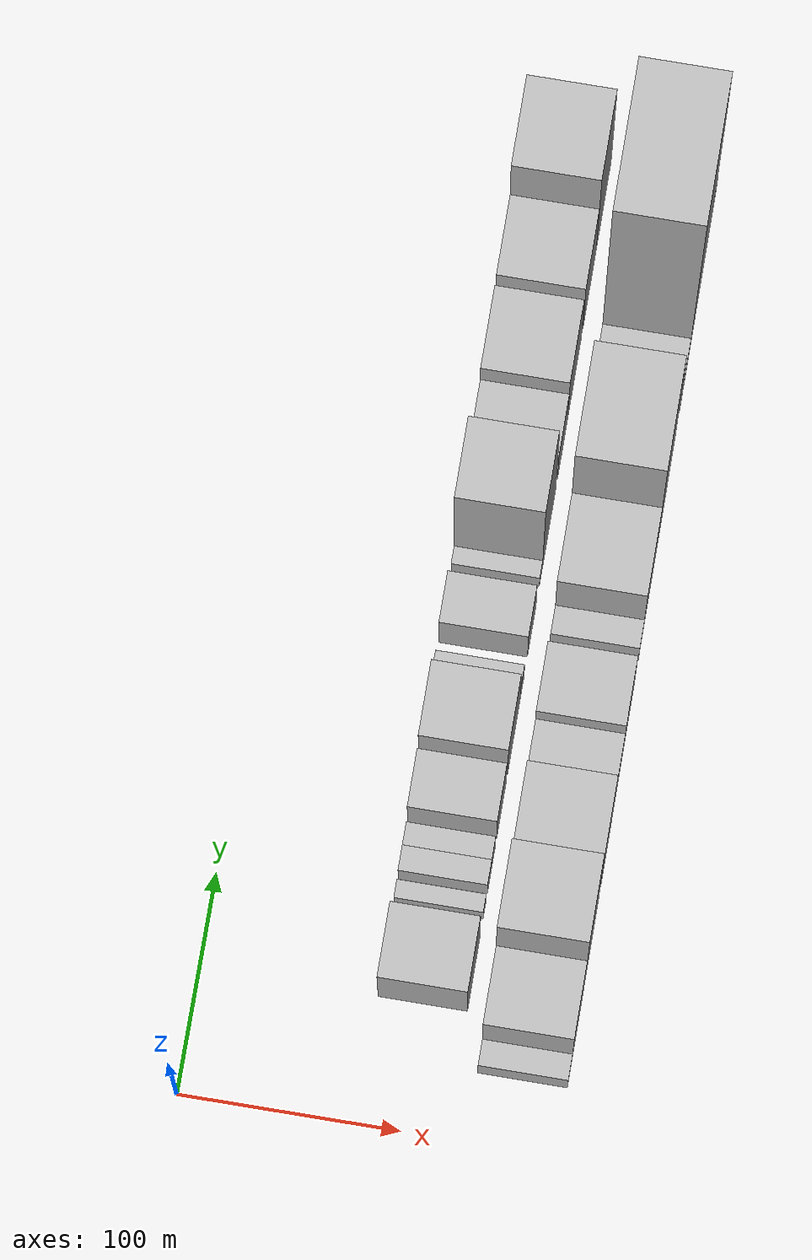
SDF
<sdf version="1.6">
 <world name="default">
  <model name="building_14">
   <static>1</static>
   <pose>100.0000 74.5222 0 0.000000 0.000000 0.000000</pose>
   <link name="link">
    <pose>0 0 28.50 0 0 0</pose>
    <collision name="collision"><geometry><box><size>40.0000 33.8331 57.0000</size></box></geometry></collision>
    <visual name="visual">
     <cast_shadows>0</cast_shadows>
     <geometry><box><size>40.0000 33.8331 57.0000</size></box></geometry>
     <material>
      <script>
       <uri>model://HANNAS_wall/materials/scripts</uri>
       <uri>model://HANNAS_wall/materials/textures</uri>
       <name>vrc/HANNAS_wall</name>
      </script>
     </material>
    </visual>
   </link>
  </model>
  <model name="building_15">
   <static>1</static>
   <pose>100.0000 103.6076 0 0.000000 0.000000 0.000000</pose>
   <link name="link">
    <pose>0 0 9.00 0 0 0</pose>
    <collision name="collision"><geometry><box><size>40.0000 8.3377 18.0000</size></box></geometry></collision>
    <visual name="visual">
     <cast_shadows>0</cast_shadows>
     <geometry><box><size>40.0000 8.3377 18.0000</size></box></geometry>
     <material>
      <script>
       <uri>model://HANNAS_wall/materials/scripts</uri>
       <uri>model://HANNAS_wall/materials/textures</uri>
       <name>vrc/HANNAS_wall</name>
      </script>
     </material>
    </visual>
   </link>
  </model>
  <model name="building_16">
   <static>1</static>
   <pose>100.0000 116.5415 0 0.000000 0.000000 0.000000</pose>
   <link name="link">
    <pose>0 0 12.00 0 0 0</pose>
    <collision name="collision"><geometry><box><size>40.0000 11.5301 24.0000</size></box></geometry></collision>
    <visual name="visual">
     <cast_shadows>0</cast_shadows>
     <geometry><box><size>40.0000 11.5301 24.0000</size></box></geometry>
     <material>
      <script>
       <uri>model://HANNAS_wall/materials/scripts</uri>
       <uri>model://HANNAS_wall/materials/textures</uri>
       <name>vrc/HANNAS_wall</name>
      </script>
     </material>
    </visual>
   </link>
  </model>
  <model name="building_17">
   <static>1</static>
   <pose>100.0000 127.5375 0 0.000000 0.000000 0.000000</pose>
   <link name="link">
    <pose>0 0 12.00 0 0 0</pose>
    <collision name="collision"><geometry><box><size>40.0000 10.4619 24.0000</size></box></geometry></collision>
    <visual name="visual">
     <cast_shadows>0</cast_shadows>
     <geometry><box><size>40.0000 10.4619 24.0000</size></box></geometry>
     <material>
      <script>
       <uri>model://HANNAS_wall/materials/scripts</uri>
       <uri>model://HANNAS_wall/materials/textures</uri>
       <name>vrc/HANNAS_wall</name>
      </script>
     </material>
    </visual>
   </link>
  </model>
  <model name="building_18">
   <static>1</static>
   <pose>100.0000 148.9427 0 0.000000 0.000000 0.000000</pose>
   <link name="link">
    <pose>0 0 22.50 0 0 0</pose>
    <collision name="collision"><geometry><box><size>40.0000 26.3484 45.0000</size></box></geometry></collision>
    <visual name="visual">
     <cast_shadows>0</cast_shadows>
     <geometry><box><size>40.0000 26.3484 45.0000</size></box></geometry>
     <material>
      <script>
       <uri>model://HANNAS_wall/materials/scripts</uri>
       <uri>model://HANNAS_wall/materials/textures</uri>
       <name>vrc/HANNAS_wall</name>
      </script>
     </material>
    </visual>
   </link>
  </model>
  <model name="building_19">
   <static>1</static>
   <pose>100.0000 182.2461 0 0.000000 0.000000 0.000000</pose>
   <link name="link">
    <pose>0 0 30.00 0 0 0</pose>
    <collision name="collision"><geometry><box><size>40.0000 34.2584 60.0000</size></box></geometry></collision>
    <visual name="visual">
     <cast_shadows>0</cast_shadows>
     <geometry><box><size>40.0000 34.2584 60.0000</size></box></geometry>
     <material>
      <script>
       <uri>model://HANNAS_wall/materials/scripts</uri>
       <uri>model://HANNAS_wall/materials/textures</uri>
       <name>vrc/HANNAS_wall</name>
      </script>
     </material>
    </visual>
   </link>
  </model>
  <model name="building_20">
   <static>1</static>
   <pose>100.0000 204.8262 0 0.000000 0.000000 0.000000</pose>
   <link name="link">
    <pose>0 0 13.50 0 0 0</pose>
    <collision name="collision"><geometry><box><size>40.0000 10.9018 27.0000</size></box></geometry></collision>
    <visual name="visual">
     <cast_shadows>0</cast_shadows>
     <geometry><box><size>40.0000 10.9018 27.0000</size></box></geometry>
     <material>
      <script>
       <uri>model://HANNAS_wall/materials/scripts</uri>
       <uri>model://HANNAS_wall/materials/textures</uri>
       <name>vrc/HANNAS_wall</name>
      </script>
     </material>
    </visual>
   </link>
  </model>
  <model name="building_21">
   <static>1</static>
   <pose>100.0000 231.0341 0 0.000000 0.000000 0.000000</pose>
   <link name="link">
    <pose>0 0 22.50 0 0 0</pose>
    <collision name="collision"><geometry><box><size>40.0000 23.5141 45.0000</size></box></geometry></collision>
    <visual name="visual">
     <cast_shadows>0</cast_shadows>
     <geometry><box><size>40.0000 23.5141 45.0000</size></box></geometry>
     <material>
      <script>
       <uri>model://HANNAS_wall/materials/scripts</uri>
       <uri>model://HANNAS_wall/materials/textures</uri>
       <name>vrc/HANNAS_wall</name>
      </script>
     </material>
    </visual>
   </link>
  </model>
  <model name="building_22">
   <static>1</static>
   <pose>100.0000 255.8739 0 0.000000 0.000000 0.000000</pose>
   <link name="link">
    <pose>0 0 9.00 0 0 0</pose>
    <collision name="collision"><geometry><box><size>40.0000 8.1655 18.0000</size></box></geometry></collision>
    <visual name="visual">
     <cast_shadows>0</cast_shadows>
     <geometry><box><size>40.0000 8.1655 18.0000</size></box></geometry>
     <material>
      <script>
       <uri>model://HANNAS_wall/materials/scripts</uri>
       <uri>model://HANNAS_wall/materials/textures</uri>
       <name>vrc/HANNAS_wall</name>
      </script>
     </material>
    </visual>
   </link>
  </model>
  <model name="building_23">
   <static>1</static>
   <pose>100.0000 278.2463 0 0.000000 0.000000 0.000000</pose>
   <link name="link">
    <pose>0 0 58.50 0 0 0</pose>
    <collision name="collision"><geometry><box><size>40.0000 36.5794 117.0000</size></box></geometry></collision>
    <visual name="visual">
     <cast_shadows>0</cast_shadows>
     <geometry><box><size>40.0000 36.5794 117.0000</size></box></geometry>
     <material>
      <script>
       <uri>model://HANNAS_wall/materials/scripts</uri>
       <uri>model://HANNAS_wall/materials/textures</uri>
       <name>vrc/HANNAS_wall</name>
      </script>
     </material>
    </visual>
   </link>
  </model>
  <model name="building_24">
   <static>1</static>
   <pose>100.0000 315.6648 0 0.000000 0.000000 0.000000</pose>
   <link name="link">
    <pose>0 0 24.00 0 0 0</pose>
    <collision name="collision"><geometry><box><size>40.0000 28.2575 48.0000</size></box></geometry></collision>
    <visual name="visual">
     <cast_shadows>0</cast_shadows>
     <geometry><box><size>40.0000 28.2575 48.0000</size></box></geometry>
     <material>
      <script>
       <uri>model://HANNAS_wall/materials/scripts</uri>
       <uri>model://HANNAS_wall/materials/textures</uri>
       <name>vrc/HANNAS_wall</name>
      </script>
     </material>
    </visual>
   </link>
  </model>
  <model name="building_25">
   <static>1</static>
   <pose>100.0000 348.8951 0 0.000000 0.000000 0.000000</pose>
   <link name="link">
    <pose>0 0 34.50 0 0 0</pose>
    <collision name="collision"><geometry><box><size>40.0000 38.2031 69.0000</size></box></geometry></collision>
    <visual name="visual">
     <cast_shadows>0</cast_shadows>
     <geometry><box><size>40.0000 38.2031 69.0000</size></box></geometry>
     <material>
      <script>
       <uri>model://HANNAS_wall/materials/scripts</uri>
       <uri>model://HANNAS_wall/materials/textures</uri>
       <name>vrc/HANNAS_wall</name>
      </script>
     </material>
    </visual>
   </link>
  </model>
  <model name="building_26">
   <static>1</static>
   <pose>100.0000 390.5127 0 0.000000 0.000000 0.000000</pose>
   <link name="link">
    <pose>0 0 36.00 0 0 0</pose>
    <collision name="collision"><geometry><box><size>40.0000 37.0322 72.0000</size></box></geometry></collision>
    <visual name="visual">
     <cast_shadows>0</cast_shadows>
     <geometry><box><size>40.0000 37.0322 72.0000</size></box></geometry>
     <material>
      <script>
       <uri>model://HANNAS_wall/materials/scripts</uri>
       <uri>model://HANNAS_wall/materials/textures</uri>
       <name>vrc/HANNAS_wall</name>
      </script>
     </material>
    </visual>
   </link>
  </model>
  <model name="building_27">
   <static>1</static>
   <pose>100.0000 429.8774 0 0.000000 0.000000 0.000000</pose>
   <link name="link">
    <pose>0 0 60.00 0 0 0</pose>
    <collision name="collision"><geometry><box><size>40.0000 41.6971 120.0000</size></box></geometry></collision>
    <visual name="visual">
     <cast_shadows>0</cast_shadows>
     <geometry><box><size>40.0000 41.6971 120.0000</size></box></geometry>
     <material>
      <script>
       <uri>model://HANNAS_wall/materials/scripts</uri>
       <uri>model://HANNAS_wall/materials/textures</uri>
       <name>vrc/HANNAS_wall</name>
      </script>
     </material>
    </visual>
   </link>
  </model>
  <model name="building_40">
   <static>1</static>
   <pose>149.0000 37.2230 0 0.000000 0.000000 0.000000</pose>
   <link name="link">
    <pose>0 0 12.00 0 0 0</pose>
    <collision name="collision"><geometry><box><size>40.0000 11.7597 24.0000</size></box></geometry></collision>
    <visual name="visual">
     <cast_shadows>0</cast_shadows>
     <geometry><box><size>40.0000 11.7597 24.0000</size></box></geometry>
     <material>
      <script>
       <uri>model://HANNAS_wall/materials/scripts</uri>
       <uri>model://HANNAS_wall/materials/textures</uri>
       <name>vrc/HANNAS_wall</name>
      </script>
     </material>
    </visual>
   </link>
  </model>
  <model name="building_41">
   <static>1</static>
   <pose>149.0000 60.5076 0 0.000000 0.000000 0.000000</pose>
   <link name="link">
    <pose>0 0 34.50 0 0 0</pose>
    <collision name="collision"><geometry><box><size>40.0000 34.8094 69.0000</size></box></geometry></collision>
    <visual name="visual">
     <cast_shadows>0</cast_shadows>
     <geometry><box><size>40.0000 34.8094 69.0000</size></box></geometry>
     <material>
      <script>
       <uri>model://HANNAS_wall/materials/scripts</uri>
       <uri>model://HANNAS_wall/materials/textures</uri>
       <name>vrc/HANNAS_wall</name>
      </script>
     </material>
    </visual>
   </link>
  </model>
  <model name="building_42">
   <static>1</static>
   <pose>149.0000 97.3107 0 0.000000 0.000000 0.000000</pose>
   <link name="link">
    <pose>0 0 60.00 0 0 0</pose>
    <collision name="collision"><geometry><box><size>40.0000 38.7968 120.0000</size></box></geometry></collision>
    <visual name="visual">
     <cast_shadows>0</cast_shadows>
     <geometry><box><size>40.0000 38.7968 120.0000</size></box></geometry>
     <material>
      <script>
       <uri>model://HANNAS_wall/materials/scripts</uri>
       <uri>model://HANNAS_wall/materials/textures</uri>
       <name>vrc/HANNAS_wall</name>
      </script>
     </material>
    </visual>
   </link>
  </model>
  <model name="building_43">
   <static>1</static>
   <pose>149.0000 140.5461 0 0.000000 0.000000 0.000000</pose>
   <link name="link">
    <pose>0 0 37.50 0 0 0</pose>
    <collision name="collision"><geometry><box><size>40.0000 37.6740 75.0000</size></box></geometry></collision>
    <visual name="visual">
     <cast_shadows>0</cast_shadows>
     <geometry><box><size>40.0000 37.6740 75.0000</size></box></geometry>
     <material>
      <script>
       <uri>model://HANNAS_wall/materials/scripts</uri>
       <uri>model://HANNAS_wall/materials/textures</uri>
       <name>vrc/HANNAS_wall</name>
      </script>
     </material>
    </visual>
   </link>
  </model>
  <model name="building_44">
   <static>1</static>
   <pose>149.0000 171.8109 0 0.000000 0.000000 0.000000</pose>
   <link name="link">
    <pose>0 0 21.00 0 0 0</pose>
    <collision name="collision"><geometry><box><size>40.0000 24.8556 42.0000</size></box></geometry></collision>
    <visual name="visual">
     <cast_shadows>0</cast_shadows>
     <geometry><box><size>40.0000 24.8556 42.0000</size></box></geometry>
     <material>
      <script>
       <uri>model://HANNAS_wall/materials/scripts</uri>
       <uri>model://HANNAS_wall/materials/textures</uri>
       <name>vrc/HANNAS_wall</name>
      </script>
     </material>
    </visual>
   </link>
  </model>
  <model name="building_45">
   <static>1</static>
   <pose>149.0000 200.0804 0 0.000000 0.000000 0.000000</pose>
   <link name="link">
    <pose>0 0 30.00 0 0 0</pose>
    <collision name="collision"><geometry><box><size>40.0000 31.6833 60.0000</size></box></geometry></collision>
    <visual name="visual">
     <cast_shadows>0</cast_shadows>
     <geometry><box><size>40.0000 31.6833 60.0000</size></box></geometry>
     <material>
      <script>
       <uri>model://HANNAS_wall/materials/scripts</uri>
       <uri>model://HANNAS_wall/materials/textures</uri>
       <name>vrc/HANNAS_wall</name>
      </script>
     </material>
    </visual>
   </link>
  </model>
  <model name="building_46">
   <static>1</static>
   <pose>149.0000 232.4997 0 0.000000 0.000000 0.000000</pose>
   <link name="link">
    <pose>0 0 13.50 0 0 0</pose>
    <collision name="collision"><geometry><box><size>40.0000 13.1554 27.0000</size></box></geometry></collision>
    <visual name="visual">
     <cast_shadows>0</cast_shadows>
     <geometry><box><size>40.0000 13.1554 27.0000</size></box></geometry>
     <material>
      <script>
       <uri>model://HANNAS_wall/materials/scripts</uri>
       <uri>model://HANNAS_wall/materials/textures</uri>
       <name>vrc/HANNAS_wall</name>
      </script>
     </material>
    </visual>
   </link>
  </model>
  <model name="building_47">
   <static>1</static>
   <pose>149.0000 259.1072 0 0.000000 0.000000 0.000000</pose>
   <link name="link">
    <pose>0 0 39.00 0 0 0</pose>
    <collision name="collision"><geometry><box><size>40.0000 40.0596 78.0000</size></box></geometry></collision>
    <visual name="visual">
     <cast_shadows>0</cast_shadows>
     <geometry><box><size>40.0000 40.0596 78.0000</size></box></geometry>
     <material>
      <script>
       <uri>model://HANNAS_wall/materials/scripts</uri>
       <uri>model://HANNAS_wall/materials/textures</uri>
       <name>vrc/HANNAS_wall</name>
      </script>
     </material>
    </visual>
   </link>
  </model>
  <model name="building_48">
   <static>1</static>
   <pose>149.0000 304.8563 0 0.000000 0.000000 0.000000</pose>
   <link name="link">
    <pose>0 0 75.00 0 0 0</pose>
    <collision name="collision"><geometry><box><size>40.0000 51.4387 150.0000</size></box></geometry></collision>
    <visual name="visual">
     <cast_shadows>0</cast_shadows>
     <geometry><box><size>40.0000 51.4387 150.0000</size></box></geometry>
     <material>
      <script>
       <uri>model://HANNAS_wall/materials/scripts</uri>
       <uri>model://HANNAS_wall/materials/textures</uri>
       <name>vrc/HANNAS_wall</name>
      </script>
     </material>
    </visual>
   </link>
  </model>
  <model name="building_49">
   <static>1</static>
   <pose>149.0000 344.2085 0 0.000000 0.000000 0.000000</pose>
   <link name="link">
    <pose>0 0 9.00 0 0 0</pose>
    <collision name="collision"><geometry><box><size>40.0000 7.2657 18.0000</size></box></geometry></collision>
    <visual name="visual">
     <cast_shadows>0</cast_shadows>
     <geometry><box><size>40.0000 7.2657 18.0000</size></box></geometry>
     <material>
      <script>
       <uri>model://HANNAS_wall/materials/scripts</uri>
       <uri>model://HANNAS_wall/materials/textures</uri>
       <name>vrc/HANNAS_wall</name>
      </script>
     </material>
    </visual>
   </link>
  </model>
  <model name="building_50">
   <static>1</static>
   <pose>149.0000 360.0584 0 0.000000 0.000000 0.000000</pose>
   <link name="link">
    <pose>0 0 15.00 0 0 0</pose>
    <collision name="collision"><geometry><box><size>40.0000 16.4343 30.0000</size></box></geometry></collision>
    <visual name="visual">
     <cast_shadows>0</cast_shadows>
     <geometry><box><size>40.0000 16.4343 30.0000</size></box></geometry>
     <material>
      <script>
       <uri>model://HANNAS_wall/materials/scripts</uri>
       <uri>model://HANNAS_wall/materials/textures</uri>
       <name>vrc/HANNAS_wall</name>
      </script>
     </material>
    </visual>
   </link>
  </model>
  <model name="building_51">
   <static>1</static>
   <pose>149.0000 402.3273 0 0.000000 0.000000 0.000000</pose>
   <link name="link">
    <pose>0 0 112.50 0 0 0</pose>
    <collision name="collision"><geometry><box><size>40.0000 68.1034 225.0000</size></box></geometry></collision>
    <visual name="visual">
     <cast_shadows>0</cast_shadows>
     <geometry><box><size>40.0000 68.1034 225.0000</size></box></geometry>
     <material>
      <script>
       <uri>model://HANNAS_wall/materials/scripts</uri>
       <uri>model://HANNAS_wall/materials/textures</uri>
       <name>vrc/HANNAS_wall</name>
      </script>
     </material>
    </visual>
   </link>
  </model>
  <model name="building_52">
   <static>1</static>
   <pose>149.0000 441.0323 0 0.000000 0.000000 0.000000</pose>
   <link name="link">
    <pose>0 0 10.50 0 0 0</pose>
    <collision name="collision"><geometry><box><size>40.0000 9.3066 21.0000</size></box></geometry></collision>
    <visual name="visual">
     <cast_shadows>0</cast_shadows>
     <geometry><box><size>40.0000 9.3066 21.0000</size></box></geometry>
     <material>
      <script>
       <uri>model://HANNAS_wall/materials/scripts</uri>
       <uri>model://HANNAS_wall/materials/textures</uri>
       <name>vrc/HANNAS_wall</name>
      </script>
     </material>
    </visual>
   </link>
  </model>
 </world>
</sdf>
